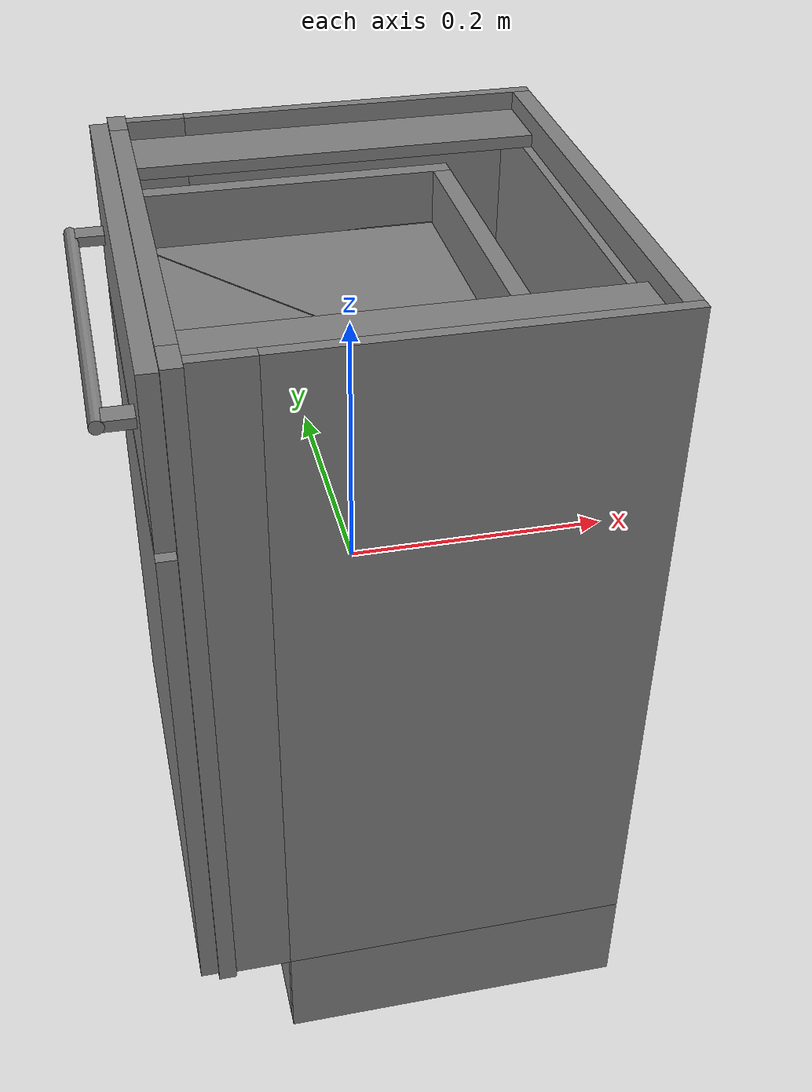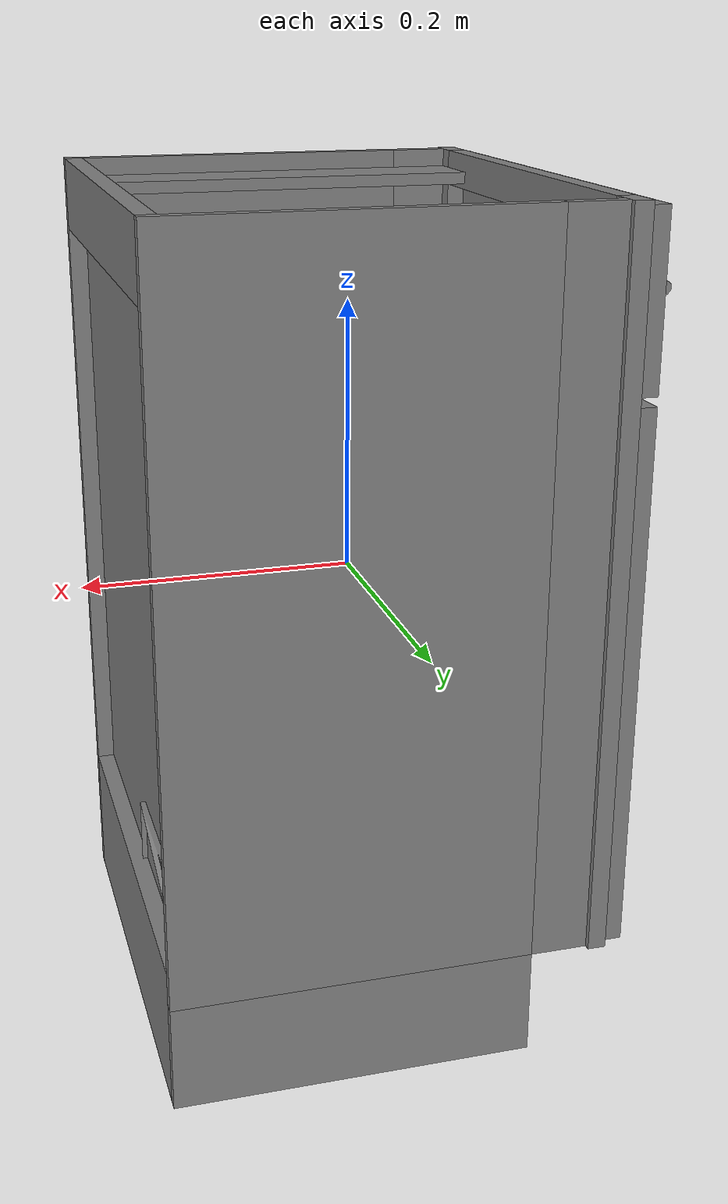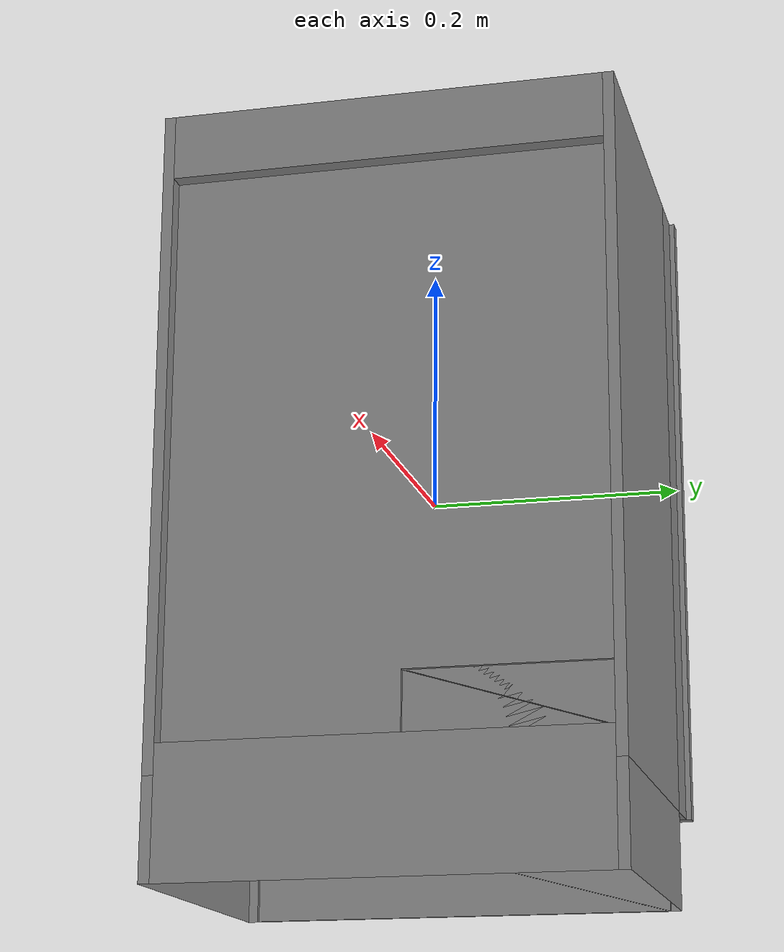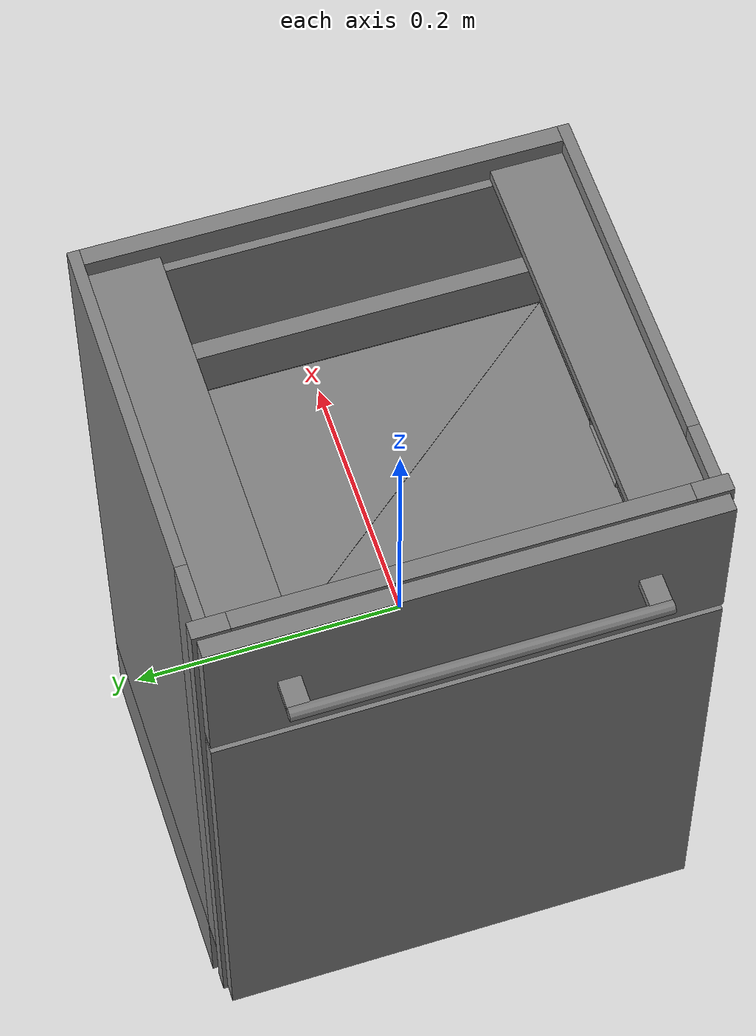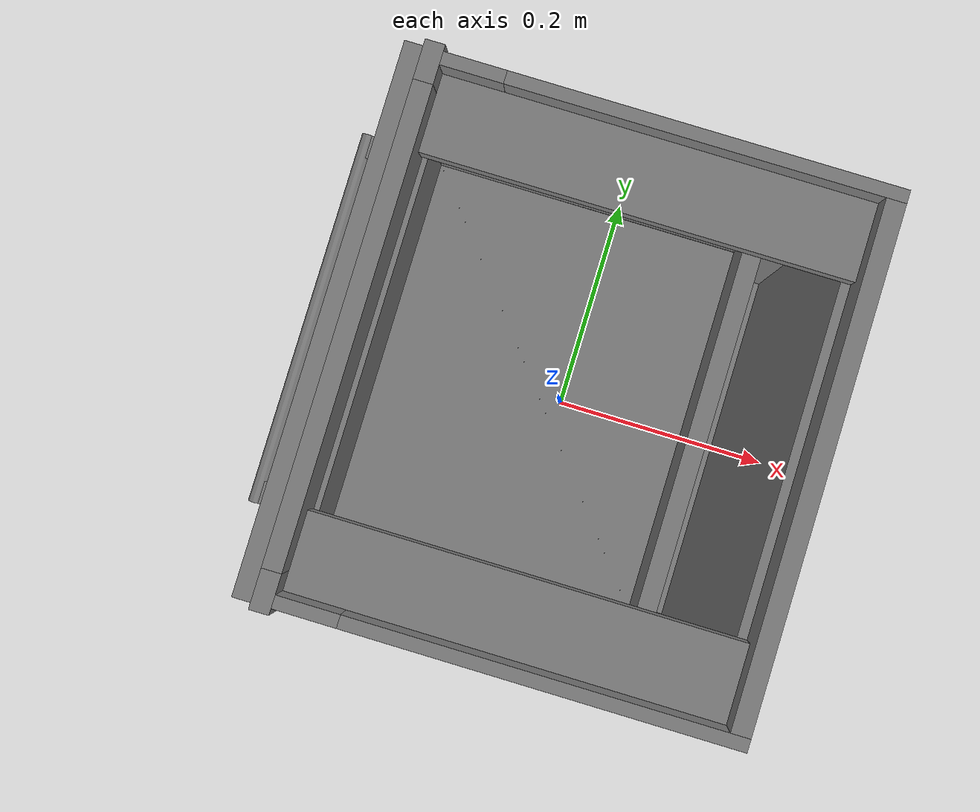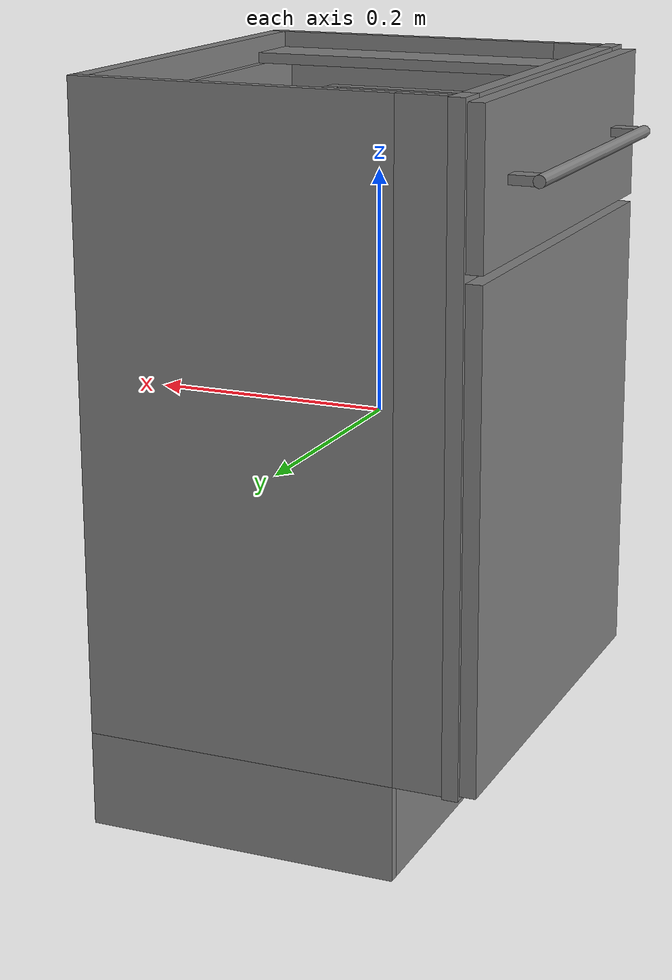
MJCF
<mujoco model="partnet_1700d057c9e0c88cc59350d819542ec7">
    <compiler angle="radian" />
    <size njmax="500" nconmax="100" />
    <asset>
        <mesh name="original-40" file="original-40.stl" scale="0.4 0.4 0.4" />
        <mesh name="original-42" file="original-42.stl" scale="0.4 0.4 0.4" />
        <mesh name="original-44" file="original-44.stl" scale="0.4 0.4 0.4" />
        <mesh name="original-43" file="original-43.stl" scale="0.4 0.4 0.4" />
        <mesh name="original-34" file="original-34.stl" scale="0.4 0.4 0.4" />
        <mesh name="original-26" file="original-26.stl" scale="0.4 0.4 0.4" />
        <mesh name="original-25" file="original-25.stl" scale="0.4 0.4 0.4" />
        <mesh name="original-30" file="original-30.stl" scale="0.4 0.4 0.4" />
        <mesh name="original-31" file="original-31.stl" scale="0.4 0.4 0.4" />
        <mesh name="original-29" file="original-29.stl" scale="0.4 0.4 0.4" />
        <mesh name="original-28" file="original-28.stl" scale="0.4 0.4 0.4" />
        <mesh name="original-36" file="original-36.stl" scale="0.4 0.4 0.4" />
        <mesh name="original-37" file="original-37.stl" scale="0.4 0.4 0.4" />
        <mesh name="original-38" file="original-38.stl" scale="0.4 0.4 0.4" />
        <mesh name="original-32" file="original-32.stl" scale="0.4 0.4 0.4" />
        <mesh name="original-2" file="original-2.stl" scale="0.4 0.4 0.4" />
        <mesh name="original-12" file="original-12.stl" scale="0.4 0.4 0.4" />
        <mesh name="original-11" file="original-11.stl" scale="0.4 0.4 0.4" />
        <mesh name="original-16" file="original-16.stl" scale="0.4 0.4 0.4" />
        <mesh name="original-15" file="original-15.stl" scale="0.4 0.4 0.4" />
        <mesh name="original-6" file="original-6.stl" scale="0.4 0.4 0.4" />
        <mesh name="original-3" file="original-3.stl" scale="0.4 0.4 0.4" />
        <mesh name="original-8" file="original-8.stl" scale="0.4 0.4 0.4" />
        <mesh name="original-4" file="original-4.stl" scale="0.4 0.4 0.4" />
        <mesh name="original-9" file="original-9.stl" scale="0.4 0.4 0.4" />
        <mesh name="original-5" file="original-5.stl" scale="0.4 0.4 0.4" />
        <mesh name="original-22" file="original-22.stl" scale="0.4 0.4 0.4" />
        <mesh name="original-21" file="original-21.stl" scale="0.4 0.4 0.4" />
        <mesh name="original-7" file="original-7.stl" scale="0.4 0.4 0.4" />
        <mesh name="original-18" file="original-18.stl" scale="0.4 0.4 0.4" />
        <mesh name="original-45" file="original-45.stl" scale="0.4 0.4 0.4" />
        <mesh name="original-17" file="original-17.stl" scale="0.4 0.4 0.4" />
        <mesh name="original-19" file="original-19.stl" scale="0.4 0.4 0.4" />
        <mesh name="original-13" file="original-13.stl" scale="0.4 0.4 0.4" />
        <mesh name="original-20" file="original-20.stl" scale="0.4 0.4 0.4" />
    </asset>
    <worldbody>
    <body>
        <body name="object">
        <geom quat="0.5 0.5 -0.5 -0.5" type="mesh" group="0" mesh="original-2" contype="0" conaffinity="0" />
        <geom quat="0.5 0.5 -0.5 -0.5" type="mesh" group="0" mesh="original-12" contype="0" conaffinity="0" />
        <geom quat="0.5 0.5 -0.5 -0.5" type="mesh" group="0" mesh="original-11" contype="0" conaffinity="0" />
        <geom quat="0.5 0.5 -0.5 -0.5" type="mesh" group="0" mesh="original-16" contype="0" conaffinity="0" />
        <geom quat="0.5 0.5 -0.5 -0.5" type="mesh" group="0" mesh="original-15" contype="0" conaffinity="0" />
        <geom quat="0.5 0.5 -0.5 -0.5" type="mesh" group="0" mesh="original-6" contype="0" conaffinity="0" />
        <geom quat="0.5 0.5 -0.5 -0.5" type="mesh" group="0" mesh="original-3" contype="0" conaffinity="0" />
        <geom quat="0.5 0.5 -0.5 -0.5" type="mesh" group="0" mesh="original-8" contype="0" conaffinity="0" />
        <geom quat="0.5 0.5 -0.5 -0.5" type="mesh" group="0" mesh="original-4" contype="0" conaffinity="0" />
        <geom quat="0.5 0.5 -0.5 -0.5" type="mesh" group="0" mesh="original-9" contype="0" conaffinity="0" />
        <geom quat="0.5 0.5 -0.5 -0.5" type="mesh" group="0" mesh="original-5" contype="0" conaffinity="0" />
        <geom quat="0.5 0.5 -0.5 -0.5" type="mesh" group="0" mesh="original-22" contype="0" conaffinity="0" />
        <geom quat="0.5 0.5 -0.5 -0.5" type="mesh" group="0" mesh="original-21" contype="0" conaffinity="0" />
        <geom quat="0.5 0.5 -0.5 -0.5" type="mesh" group="0" mesh="original-7" contype="0" conaffinity="0" />
        <geom quat="0.5 0.5 -0.5 -0.5" type="mesh" group="0" mesh="original-18" contype="0" conaffinity="0" />
        <geom quat="0.5 0.5 -0.5 -0.5" type="mesh" group="0" mesh="original-45" contype="0" conaffinity="0" />
        <geom quat="0.5 0.5 -0.5 -0.5" type="mesh" group="0" mesh="original-17" contype="0" conaffinity="0" />
        <geom quat="0.5 0.5 -0.5 -0.5" type="mesh" group="0" mesh="original-19" contype="0" conaffinity="0" />
        <geom quat="0.5 0.5 -0.5 -0.5" type="mesh" group="0" mesh="original-13" contype="0" conaffinity="0" />
        <geom quat="0.5 0.5 -0.5 -0.5" type="mesh" group="0" mesh="original-20" contype="0" conaffinity="0" />
        <body name="link_1" pos="-0.1488764 -0.1772804 -0.241666" quat="0.5 0.5 -0.5 -0.5">
            <inertial pos="-0.1798516 0.1986948 0.0006703360000000001" quat="0.491122 0.510479 -0.489807 0.508232" mass="30.3952" diaginertia="4.61613 2.48166 2.14277" />
            <joint name="joint_1" pos="0.0 0.0 0.0" axis="0 1 0" limited="true" range="0 1.5708" />
            <geom pos="-0.1772804 0.241666 -0.1488764" type="mesh" group="0" mesh="original-40" />

        </body>
        <body name="link_0" pos="0.15641000000000002 -0.000356626 0.20955000000000001" quat="0.5 0.5 -0.5 -0.5">
            <inertial pos="-0.001157976 0.0065786 0.220666" quat="0.507874 0.491888 0.509314 0.490621" mass="27.7887" diaginertia="3.30203 1.86235 1.63622" />
            <joint name="joint_0" pos="0.0 0.0 0.0" axis="0 0 1" type="slide" limited="true" range="0.0 0.20800000000000002" />
            <geom pos="-0.000356626 -0.20955000000000001 0.15641000000000002" type="mesh" group="0" mesh="original-34" />
            <geom pos="-0.000356626 -0.20955000000000001 0.15641000000000002" type="mesh" group="0" mesh="original-26" />
            <geom pos="-0.000356626 -0.20955000000000001 0.15641000000000002" type="mesh" group="0" mesh="original-25" />
            <geom pos="-0.000356626 -0.20955000000000001 0.15641000000000002" type="mesh" group="0" mesh="original-30" />
            <geom pos="-0.000356626 -0.20955000000000001 0.15641000000000002" type="mesh" group="0" mesh="original-31" />
            <geom pos="-0.000356626 -0.20955000000000001 0.15641000000000002" type="mesh" group="0" mesh="original-29" />
            <geom pos="-0.000356626 -0.20955000000000001 0.15641000000000002" type="mesh" group="0" mesh="original-28" />
            <geom pos="-0.000356626 -0.20955000000000001 0.15641000000000002" type="mesh" group="0" mesh="original-36" />
            <geom pos="-0.000356626 -0.20955000000000001 0.15641000000000002" type="mesh" group="0" mesh="original-37" />
            <geom pos="-0.000356626 -0.20955000000000001 0.15641000000000002" type="mesh" group="0" mesh="original-38" />
            <geom pos="-0.000356626 -0.20955000000000001 0.15641000000000002" type="mesh" group="0" mesh="original-32" />
        </body>
    </body>
        <site name="bottom_site" pos="0 0 -0.3" rgba="0 0 0 0" size="0.005" />
        <site name="top_site" pos="0 0 0.3" rgba="0 0 0 0" size="0.005" />
        <site name="horizontal_radius_site" pos="0.3 0 0" rgba="0 0 0 0" size="0.1" />
    </body>
    </worldbody>
</mujoco>
